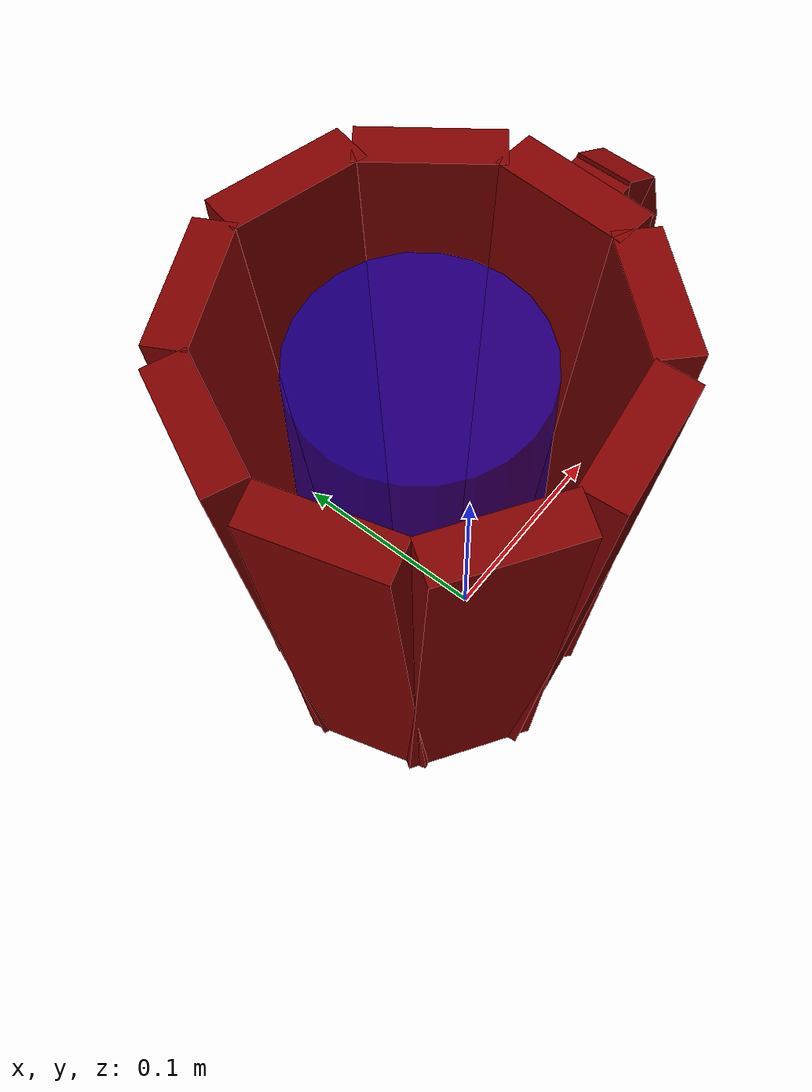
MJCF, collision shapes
<mujoco model="model">
  <option timestep="0.002" gravity="0.0 0.0 -9.81"/>
  <compiler angle="radian"/>
  <asset>
    <mesh file="visuals/blade.obj" name="blade_vis"/>
    <mesh file="visuals/pitcher.obj" name="pitcher_vis"/>
    <mesh file="visuals/pitcher_main.obj" name="pitcher_main_vis"/>
    <texture file="visuals/T_BC001.png" name="pitcher_material" type="2d"/>
    <material name="pitcher_material" rgba="1 1 1 1.0" texture="pitcher_material" shininess="-1.0" specular="2"/>
    <texture file="visuals/T_BC001.png" name="blade_material" type="2d"/>
    <material name="blade_material" rgba="1 1 1 1.0" texture="blade_material" shininess="-1.0" specular="4"/>
    <texture file="visuals/T_BC001.png" name="pitcher_main_material" type="2d"/>
    <material name="pitcher_main_material" rgba="1 1 1 0.699999988079071" texture="pitcher_main_material" shininess="-1.0" specular="0.3103448502657381"/>
  </asset>
  <default>
    <default class="visual">
      <geom conaffinity="0" contype="0" group="1" type="mesh"/>
    </default>
    <default class="collision">
      <geom group="0" rgba="0.5 0 0 0.5" density="1.0" solref="0.004 1" solimp="0.998 0.998 0.001"/>
    </default>
    <default class="spawn">
      <geom group="0" rgba="1 1 1 0.5" contype="0" conaffinity="0"/>
      <site group="0" rgba="1 1 1 0.5"/>
    </default>
    <default class="region">
      <geom group="1" conaffinity="0" contype="0" rgba="0 1 0 0" mass="0"/>
    </default>
  </default>
  <worldbody>
    <body>
      <body name="object">
        <body name="pitcher">
          <geom mesh="pitcher_vis" type="mesh" solimp="0.998 0.998 0.001" solref="0.001 1" friction="0.95 0.3 0.1" class="visual" material="pitcher_material"/>
          <geom class="collision" type="box" pos="0.10807475 0.01339258 0.20536530" size="0.010490579530596733 0.01306664478033781 0.012952008284628391" quat="0.8922321200370789 0.0 -0.4515770375728607 0.0" name="pitcher_handle_5"/>
          <geom class="collision" type="box" pos="0.08901021 0.01339258 0.20961357" size="0.014333691447973251 0.013066703453660011 0.010490639135241508" quat="1.0 0.0 0.0 0.0" name="pitcher_handle_6"/>
          <geom class="collision" type="box" pos="0.11953825 0.01339258 0.18571712" size="0.010490579530596733 0.01306664478033781 0.017087645828723907" quat="0.9909359216690063 0.0 -0.13433536887168884 0.0" name="pitcher_handle_4"/>
          <geom class="collision" type="box" pos="0.11673198 0.01339258 0.10809786" size="0.010490579530596733 0.01306664478033781 0.025639450177550316" quat="0.9911426305770874 0.0 0.13280166685581207 0.0" name="pitcher_handle_2"/>
          <geom class="collision" type="box" pos="0.12325943 0.01339258 0.15072952" size="0.010673878714442253 0.013066688552498817 0.023233795538544655" quat="1.0 0.0 0.0 0.0" name="pitcher_handle_3"/>
          <geom class="collision" type="box" pos="0.09696562 0.01339258 0.06813032" size="0.010490579530596733 0.01306664478033781 0.025639450177550316" quat="0.9335750341415405 0.0 0.35838204622268677 0.0" name="pitcher_handle_1"/>
          <geom class="collision" type="box" pos="0.07224464 0.01339258 0.04951027" size="0.010490579530596733 0.01306664478033781 0.015172729268670082" quat="0.7355284094810486 0.0 0.6774938702583313 0.0" name="pitcher_handle_0"/>
          <body name="blade">
            <geom mesh="blade_vis" type="mesh" solimp="0.998 0.998 0.001" solref="0.001 1" friction="0.95 0.3 0.1" class="visual" material="blade_material"/>
            <geom type="box" pos="-0.04403136 0.00275078 -0.01096113" size="0.007543550338596106 0.0059546735137701035 0.000863152788951993" quat="0.9321237802505493 -0.06661441922187805 -0.2755560278892517 0.2253367006778717" class="collision"/>
            <geom type="box" pos="-0.01994127 0.03065409 0.00657270" size="0.008318131789565086 0.01207124162465334 0.0010331370867788792" quat="0.9443404674530029 0.2828863859176636 -0.04818582162261009 0.16085538268089294" class="collision"/>
            <geom type="box" pos="-0.03203341 0.01025107 -0.00318812" size="0.01066170446574688 0.008802132681012154 0.0008631527307443321" quat="0.9462018013000488 -0.04611463472247124 -0.2797178030014038 0.1559920310974121" class="collision"/>
            <geom type="box" pos="-0.00223216 0.01584994 -0.00022485" size="0.007543550338596106 0.00848355796188116 0.000863152788951993" quat="0.9773774147033691 0.02403903566300869 0.151308074593544 0.14581291377544403" class="collision"/>
            <geom type="box" pos="0.01173143 0.02478434 -0.00461979" size="0.011898030526936054 0.006339432671666145 0.0008631530799902976" quat="0.949954628944397 0.04359858110547066 0.1468711495399475 0.27223920822143555" class="collision"/>
            <geom type="box" pos="-0.01654129 0.01396381 -0.00356026" size="0.010661730542778969 0.010661730542778969 0.006958658341318369" quat="1.0 0.0 0.0 0.0" class="collision"/>
            <geom type="box" pos="-0.02713542 0.04161677 0.01378814" size="0.005351291038095951 0.01207124162465334 0.0010331370867788792" quat="0.9085248112678528 0.2721574008464813 -0.09097743779420853 0.3037039339542389" class="collision"/>
            <geom type="box" pos="-0.00497499 -0.01490533 0.00797065" size="0.005351291038095951 0.011837908066809177 0.0010331370867788792" quat="0.4182606339454651 -0.07813757658004761 -0.13567319512367249 -0.8947319984436035" class="collision"/>
            <geom type="box" pos="-0.01355567 -0.00298768 0.00407296" size="0.008318132720887661 0.012071240693330765 0.0010331370867788792" quat="0.2761724889278412 -0.05641830712556839 -0.14604680240154266 -0.9482700228691101" class="collision"/>
          </body>
          <body name="pitcher_main">
            <geom class="region" type="cylinder" size="0.05381676182150841 0.09801521897315979" pos="-0.01710407 0.01461306 0.12049143" rgba="0 0 1 0.5" name="reg_int"/>
            <geom mesh="pitcher_main_vis" type="mesh" solimp="0.998 0.998 0.001" solref="0.001 1" friction="0.95 0.3 0.1" class="visual" material="pitcher_main_material"/>
            <geom type="box" pos="-0.00705855 -0.06097613 0.11030882" size="0.031085535883903503 0.010197928175330162 0.13215288519859314" quat="0.996038019657135 0.056299444288015366 0.003884752281010151 0.06872818619012833" class="collision"/>
            <geom type="box" pos="-0.05876054 -0.04945454 0.11026411" size="0.031270503997802734 0.00983267743140459 0.13223929703235626" quat="0.9557594060897827 0.05402259901165962 -0.016317427158355713 -0.2886854112148285" class="collision"/>
            <geom type="box" pos="-0.08998054 -0.00637722 0.10993672" size="0.030166039243340492 0.009558545425534248 0.13259989023208618" quat="0.7946256399154663 0.04491480067372322 -0.03416666015982628 -0.6044712066650391" class="collision"/>
            <geom type="box" pos="-0.08483451 0.04664568 0.11018597" size="0.030166035518050194 0.009558546356856823 0.13234904408454895" quat="0.5259811878204346 0.02973017282783985 -0.04796688258647919 -0.8486219048500061" class="collision"/>
            <geom type="box" pos="-0.04743597 0.08178499 0.11022729" size="0.03087809681892395 0.009447832591831684 0.13232001662254333" quat="0.2060254067182541 0.011645224876701832 -0.055218569934368134 -0.9769180417060852" class="collision"/>
            <geom type="box" pos="0.00351375 0.08562316 0.11018595" size="0.03126009181141853 0.01046025287359953 0.13224677741527557" quat="0.13694703578948975 0.007740695495158434 0.05589979141950607 0.9889695644378662" class="collision"/>
            <geom type="box" pos="0.04318026 0.05703103 0.11028277" size="0.031155381351709366 0.010312704369425774 0.1321660876274109" quat="0.45098650455474854 0.02549123205244541 0.050347812473773956 0.8907449245452881" class="collision"/>
            <geom type="box" pos="0.05744791 0.00925031 0.11029091" size="0.03061414323747158 0.010745925828814507 0.13210876286029816" quat="0.7223079204559326 0.0408271960914135 0.03895952180027962 0.689265251159668" class="collision"/>
            <geom type="box" pos="0.03938327 -0.03556020 0.11031844" size="0.030436528846621513 0.010561972856521606 0.132101908326149" quat="0.9066253304481506 0.05124542862176895 0.023634959012269974 0.41814568638801575" class="collision"/>
          </body>
        </body>
        <geom class="region" name="reg_bbox" density="0" type="box" pos="0.004362500000000005 0.013373500000000003 0.1083125" size="0.1281385 0.091745 0.1336975"/>
      </body>
      <site rgba="0 1 0 0" size="0.005" pos="-0.01907964 0.01451022 0.24688057" name="anchor_site"/>
    </body>
  </worldbody>
</mujoco>
